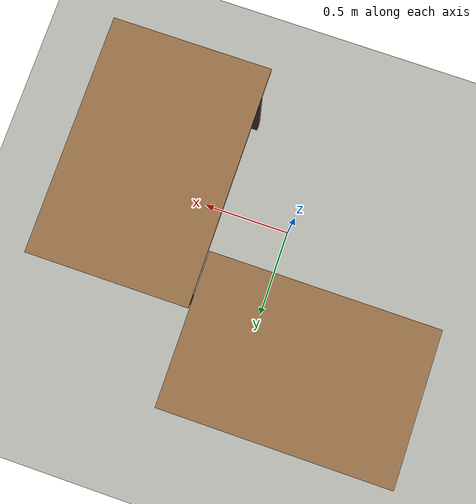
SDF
<sdf version="1.9">
 <world name="pnp_table">
  <physics name="1ms" type="dart">
   <max_step_size>0.001</max_step_size>
   <real_time_factor>1.0</real_time_factor>
  </physics>
  <plugin filename="gz-sim-physics-system" name="gz::sim::systems::Physics"/>
  <plugin filename="gz-sim-user-commands-system" name="gz::sim::systems::UserCommands"/>
  <plugin filename="gz-sim-scene-broadcaster-system" name="gz::sim::systems::SceneBroadcaster"/>
  <plugin filename="gz-sim-sensors-system" name="gz::sim::systems::Sensors">
   <render_engine>ogre2</render_engine>
  </plugin>
  <gravity>0 0 -9.81</gravity>
  <scene><ambient>0.6 0.6 0.6 1</ambient><background>0.8 0.85 0.9 1</background><shadows>true</shadows></scene>
  <light type="directional" name="sun">
   <pose>0 0 10 0 0 0</pose>
   <diffuse>0.9 0.9 0.9 1</diffuse>
   <specular>0.2 0.2 0.2 1</specular>
   <direction>-0.3 0.2 -0.9</direction>
  </light>
  <light type="point" name="ceiling">
   <pose>0.8 0 2.6 0 0 0</pose>
   <diffuse>0.6 0.6 0.6 1</diffuse>
   <specular>0.1 0.1 0.1 1</specular>
   <attenuation>
    <range>8</range>
    <constant>0.5</constant>
    <linear>0.05</linear>
    <quadratic>0.01</quadratic>
   </attenuation>
   <cast_shadows>false</cast_shadows>
  </light>
  <model name="ground_plane">
   <static>true</static>
   <link name="link">
    <collision name="collision">
     <geometry><plane><normal>0 0 1</normal><size>20 20</size></plane></geometry>
    </collision>
    <visual name="visual">
     <geometry><plane><normal>0 0 1</normal><size>20 20</size></plane></geometry>
     <material><ambient>0.7 0.7 0.68 1</ambient><diffuse>0.75 0.75 0.72 1</diffuse></material>
    </visual>
   </link>
  </model>
  <model name="overview_camera">
   <static>true</static>
   <pose>1.55 -1.05 1.75 0 0.55 2.45</pose>
   <link name="link">
    <sensor name="overview" type="camera">
     <always_on>true</always_on>
     <update_rate>2</update_rate>
     <topic>overview_camera/image</topic>
     <camera>
      <horizontal_fov>1.1</horizontal_fov>
      <image><width>800</width><height>600</height></image>
      <clip><near>0.05</near><far>20</far></clip>
     </camera>
    </sensor>
   </link>
  </model>
  <include><name>dining_table</name><uri>model://pnp_table</uri><pose>0.74 0 0 0 0 0</pose></include>
  <include>
   <name>side_table</name>
   <uri>model://pnp_side_table</uri>
   <pose>-0.25 0.70 0 0 0 1.5708</pose>
  </include>
 </world>
</sdf>

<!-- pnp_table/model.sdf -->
<sdf version="1.9">
  <model name="pnp_table">
    <static>true</static>
    <link name="link">
      <collision name="top_collision">
        <pose>0 0 0.735 0 0 0</pose>
        <geometry><box><size>0.8 1.2 0.03</size></box></geometry>
        <surface>
          <friction><ode><mu>1.0</mu><mu2>1.0</mu2></ode></friction>
        </surface>
      </collision>
      <visual name="top_visual">
        <pose>0 0 0.735 0 0 0</pose>
        <geometry><box><size>0.8 1.2 0.03</size></box></geometry>
        <material>
          <ambient>0.55 0.40 0.26 1</ambient>
          <diffuse>0.62 0.46 0.30 1</diffuse>
          <specular>0.1 0.1 0.1 1</specular>
        </material>
      </visual>
      <visual name="leg_fl">
        <pose>0.35 0.55 0.36 0 0 0</pose>
        <geometry><box><size>0.05 0.05 0.72</size></box></geometry>
        <material><diffuse>0.3 0.22 0.15 1</diffuse><ambient>0.3 0.22 0.15 1</ambient></material>
      </visual>
      <visual name="leg_fr">
        <pose>0.35 -0.55 0.36 0 0 0</pose>
        <geometry><box><size>0.05 0.05 0.72</size></box></geometry>
        <material><diffuse>0.3 0.22 0.15 1</diffuse><ambient>0.3 0.22 0.15 1</ambient></material>
      </visual>
      <visual name="leg_bl">
        <pose>-0.35 0.55 0.36 0 0 0</pose>
        <geometry><box><size>0.05 0.05 0.72</size></box></geometry>
        <material><diffuse>0.3 0.22 0.15 1</diffuse><ambient>0.3 0.22 0.15 1</ambient></material>
      </visual>
      <visual name="leg_br">
        <pose>-0.35 -0.55 0.36 0 0 0</pose>
        <geometry><box><size>0.05 0.05 0.72</size></box></geometry>
        <material><diffuse>0.3 0.22 0.15 1</diffuse><ambient>0.3 0.22 0.15 1</ambient></material>
      </visual>
    </link>
  </model>
</sdf>

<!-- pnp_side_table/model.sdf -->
<sdf version="1.9">
  <model name="pnp_side_table">
    <static>true</static>
    <link name="link">
      <collision name="top_collision">
        <pose>0 0 0.535 0 0 0</pose>
        <geometry><box><size>0.8 1.2 0.03</size></box></geometry>
        <surface>
          <friction><ode><mu>1.0</mu><mu2>1.0</mu2></ode></friction>
        </surface>
      </collision>
      <visual name="top_visual">
        <pose>0 0 0.535 0 0 0</pose>
        <geometry><box><size>0.8 1.2 0.03</size></box></geometry>
        <material>
          <ambient>0.55 0.40 0.26 1</ambient>
          <diffuse>0.62 0.46 0.30 1</diffuse>
          <specular>0.1 0.1 0.1 1</specular>
        </material>
      </visual>
      <visual name="leg_fl">
        <pose>0.35 0.55 0.26 0 0 0</pose>
        <geometry><box><size>0.05 0.05 0.52</size></box></geometry>
        <material><diffuse>0.3 0.22 0.15 1</diffuse><ambient>0.3 0.22 0.15 1</ambient></material>
      </visual>
      <visual name="leg_fr">
        <pose>0.35 -0.55 0.26 0 0 0</pose>
        <geometry><box><size>0.05 0.05 0.52</size></box></geometry>
        <material><diffuse>0.3 0.22 0.15 1</diffuse><ambient>0.3 0.22 0.15 1</ambient></material>
      </visual>
      <visual name="leg_bl">
        <pose>-0.35 0.55 0.26 0 0 0</pose>
        <geometry><box><size>0.05 0.05 0.52</size></box></geometry>
        <material><diffuse>0.3 0.22 0.15 1</diffuse><ambient>0.3 0.22 0.15 1</ambient></material>
      </visual>
      <visual name="leg_br">
        <pose>-0.35 -0.55 0.26 0 0 0</pose>
        <geometry><box><size>0.05 0.05 0.52</size></box></geometry>
        <material><diffuse>0.3 0.22 0.15 1</diffuse><ambient>0.3 0.22 0.15 1</ambient></material>
      </visual>
    </link>
  </model>
</sdf>
